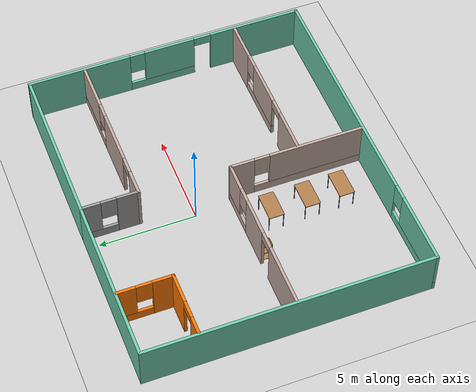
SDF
<sdf version="1.6">
 <world name="default">
  <model name="ground_plane">
   <static>1</static>
   <link name="link">
    <collision name="collision">
     <geometry><plane><normal>0 0 1</normal><size>100 100</size></plane></geometry>
     <surface>
      <contact><collide_bitmask>65535</collide_bitmask></contact>
      <friction><ode><mu>100</mu><mu2>50</mu2></ode></friction>
     </surface>
    </collision>
    <visual name="visual">
     <cast_shadows>0</cast_shadows>
     <geometry><plane><normal>0 0 1</normal><size>100 100</size></plane></geometry>
     <material>
      <script><uri>file://media/materials/scripts/gazebo.material</uri><name>Gazebo/Grey</name></script>
     </material>
    </visual>
   </link>
  </model>
  <model name="building">
   <pose>0.568611 -1.73991 0 0 -0 0</pose>
   <link name="Wall_0">
    <collision name="Wall_0_Collision">
     <geometry><box><size>14.75 0.15 2.5</size></box></geometry>
     <pose>0 0 1.25 0 -0 0</pose>
    </collision>
    <visual name="Wall_0_Visual">
     <pose>0 0 1.25 0 -0 0</pose>
     <geometry><box><size>14.75 0.15 2.5</size></box></geometry>
     <material>
      <script><uri>file://media/materials/scripts/gazebo.material</uri><name>Gazebo/Grey</name></script>
      <ambient>0.435294 0.796078 0.67451 1</ambient>
     </material>
     <meta><layer>0</layer></meta>
    </visual>
    <pose>-8.54234 0.004228 0 0 -0 1.5708</pose>
   </link>
   <link name="Wall_11">
    <pose>4.23266 4.39423 0 0 -0 0</pose>
    <visual name="Wall_11_Visual_0">
     <pose>-3.56356 0 1.25 0 -0 0</pose>
     <geometry><box><size>1.37289 0.15 2.5</size></box></geometry>
     <material>
      <script><uri>file://media/materials/scripts/gazebo.material</uri><name>Gazebo/Grey</name></script>
      <ambient>0.760784 0.662745 0.627451 1</ambient>
     </material>
     <meta><layer>0</layer></meta>
    </visual>
    <collision name="Wall_11_Collision_0">
     <geometry><box><size>1.37289 0.15 2.5</size></box></geometry>
     <pose>-3.56356 0 1.25 0 -0 0</pose>
    </collision>
    <visual name="Wall_11_Visual_1">
     <pose>-0.527181 0 1.25 0 -0 0</pose>
     <geometry><box><size>2.89987 0.15 2.5</size></box></geometry>
     <material>
      <script><uri>file://media/materials/scripts/gazebo.material</uri><name>Gazebo/Grey</name></script>
      <ambient>0.760784 0.662745 0.627451 1</ambient>
     </material>
     <meta><layer>0</layer></meta>
    </visual>
    <collision name="Wall_11_Collision_1">
     <geometry><box><size>2.89987 0.15 2.5</size></box></geometry>
     <pose>-0.527181 0 1.25 0 -0 0</pose>
    </collision>
    <visual name="Wall_11_Visual_2">
     <pose>2.58638 0 0.25 0 -0 0</pose>
     <geometry><box><size>3.32725 0.15 0.5</size></box></geometry>
     <material>
      <script><uri>file://media/materials/scripts/gazebo.material</uri><name>Gazebo/Grey</name></script>
      <ambient>0.760784 0.662745 0.627451 1</ambient>
     </material>
     <meta><layer>0</layer></meta>
    </visual>
    <collision name="Wall_11_Collision_2">
     <geometry><box><size>3.32725 0.15 0.5</size></box></geometry>
     <pose>2.58638 0 0.25 0 -0 0</pose>
    </collision>
    <visual name="Wall_11_Visual_3">
     <pose>2.98638 0 1.5 0 -0 0</pose>
     <geometry><box><size>2.52725 0.15 2</size></box></geometry>
     <material>
      <script><uri>file://media/materials/scripts/gazebo.material</uri><name>Gazebo/Grey</name></script>
      <ambient>0.760784 0.662745 0.627451 1</ambient>
     </material>
     <meta><layer>0</layer></meta>
    </visual>
    <collision name="Wall_11_Collision_3">
     <geometry><box><size>2.52725 0.15 2</size></box></geometry>
     <pose>2.98638 0 1.5 0 -0 0</pose>
    </collision>
    <visual name="Wall_11_Visual_4">
     <pose>1.32275 0 1.9 0 -0 0</pose>
     <geometry><box><size>0.8 0.15 1.2</size></box></geometry>
     <material>
      <script><uri>file://media/materials/scripts/gazebo.material</uri><name>Gazebo/Grey</name></script>
      <ambient>0.760784 0.662745 0.627451 1</ambient>
     </material>
     <meta><layer>0</layer></meta>
    </visual>
    <collision name="Wall_11_Collision_4">
     <geometry><box><size>0.8 0.15 1.2</size></box></geometry>
     <pose>1.32275 0 1.9 0 -0 0</pose>
    </collision>
    <visual name="Wall_11_Visual_5">
     <pose>-2.42711 0 2.25 0 -0 0</pose>
     <geometry><box><size>0.9 0.15 0.5</size></box></geometry>
     <material>
      <script><uri>file://media/materials/scripts/gazebo.material</uri><name>Gazebo/Grey</name></script>
      <ambient>0.760784 0.662745 0.627451 1</ambient>
     </material>
     <meta><layer>0</layer></meta>
    </visual>
    <collision name="Wall_11_Collision_5">
     <geometry><box><size>0.9 0.15 0.5</size></box></geometry>
     <pose>-2.42711 0 2.25 0 -0 0</pose>
    </collision>
   </link>
   <link name="Wall_13">
    <collision name="Wall_13_Collision">
     <geometry><box><size>8.5 0.15 2.5</size></box></geometry>
     <pose>0 0 1.25 0 -0 0</pose>
    </collision>
    <visual name="Wall_13_Visual">
     <pose>0 0 1.25 0 -0 0</pose>
     <geometry><box><size>8.5 0.15 2.5</size></box></geometry>
     <material>
      <script><uri>file://media/materials/scripts/gazebo.material</uri><name>Gazebo/Grey</name></script>
      <ambient>0.435294 0.796078 0.67451 1</ambient>
     </material>
     <meta><layer>0</layer></meta>
    </visual>
    <pose>4.23266 7.30423 0 0 -0 0</pose>
   </link>
   <link name="Wall_15">
    <pose>-4.28833 -0.269812 0 0 0 -4.6e-05</pose>
    <visual name="Wall_15_Visual_0">
     <pose>-2.61857 0 1.25 0 -0 0</pose>
     <geometry><box><size>3.26287 0.15 2.5</size></box></geometry>
     <material>
      <script><uri>file://media/materials/scripts/gazebo.material</uri><name>Gazebo/Grey</name></script>
      <ambient>0.760784 0.662745 0.627451 1</ambient>
     </material>
     <meta><layer>0</layer></meta>
    </visual>
    <collision name="Wall_15_Collision_0">
     <geometry><box><size>3.26287 0.15 2.5</size></box></geometry>
     <pose>-2.61857 0 1.25 0 -0 0</pose>
    </collision>
    <visual name="Wall_15_Visual_1">
     <pose>0.91749 0 1.25 0 -0 0</pose>
     <geometry><box><size>2.00924 0.15 2.5</size></box></geometry>
     <material>
      <script><uri>file://media/materials/scripts/gazebo.material</uri><name>Gazebo/Grey</name></script>
      <ambient>0.760784 0.662745 0.627451 1</ambient>
     </material>
     <meta><layer>0</layer></meta>
    </visual>
    <collision name="Wall_15_Collision_1">
     <geometry><box><size>2.00924 0.15 2.5</size></box></geometry>
     <pose>0.91749 0 1.25 0 -0 0</pose>
    </collision>
    <visual name="Wall_15_Visual_2">
     <pose>3.08605 0 0.25 0 -0 0</pose>
     <geometry><box><size>2.32789 0.15 0.5</size></box></geometry>
     <material>
      <script><uri>file://media/materials/scripts/gazebo.material</uri><name>Gazebo/Grey</name></script>
      <ambient>0.760784 0.662745 0.627451 1</ambient>
     </material>
     <meta><layer>0</layer></meta>
    </visual>
    <collision name="Wall_15_Collision_2">
     <geometry><box><size>2.32789 0.15 0.5</size></box></geometry>
     <pose>3.08605 0 0.25 0 -0 0</pose>
    </collision>
    <visual name="Wall_15_Visual_3">
     <pose>3.48605 0 1.5 0 -0 0</pose>
     <geometry><box><size>1.52789 0.15 2</size></box></geometry>
     <material>
      <script><uri>file://media/materials/scripts/gazebo.material</uri><name>Gazebo/Grey</name></script>
      <ambient>0.760784 0.662745 0.627451 1</ambient>
     </material>
     <meta><layer>0</layer></meta>
    </visual>
    <collision name="Wall_15_Collision_3">
     <geometry><box><size>1.52789 0.15 2</size></box></geometry>
     <pose>3.48605 0 1.5 0 -0 0</pose>
    </collision>
    <visual name="Wall_15_Visual_4">
     <pose>2.32211 0 1.9 0 -0 0</pose>
     <geometry><box><size>0.8 0.15 1.2</size></box></geometry>
     <material>
      <script><uri>file://media/materials/scripts/gazebo.material</uri><name>Gazebo/Grey</name></script>
      <ambient>0.760784 0.662745 0.627451 1</ambient>
     </material>
     <meta><layer>0</layer></meta>
    </visual>
    <collision name="Wall_15_Collision_4">
     <geometry><box><size>0.8 0.15 1.2</size></box></geometry>
     <pose>2.32211 0 1.9 0 -0 0</pose>
    </collision>
    <visual name="Wall_15_Visual_5">
     <pose>-0.537132 0 2.25 0 -0 0</pose>
     <geometry><box><size>0.9 0.15 0.5</size></box></geometry>
     <material>
      <script><uri>file://media/materials/scripts/gazebo.material</uri><name>Gazebo/Grey</name></script>
      <ambient>0.760784 0.662745 0.627451 1</ambient>
     </material>
     <meta><layer>0</layer></meta>
    </visual>
    <collision name="Wall_15_Collision_5">
     <geometry><box><size>0.9 0.15 0.5</size></box></geometry>
     <pose>-0.537132 0 2.25 0 -0 0</pose>
    </collision>
   </link>
   <link name="Wall_16">
    <pose>-0.113577 -3.745 0 0 0 -1.5708</pose>
    <visual name="Wall_16_Visual_0">
     <pose>-2.88983 0 1.25 0 -0 0</pose>
     <geometry><box><size>1.32035 0.15 2.5</size></box></geometry>
     <material>
      <script><uri>file://media/materials/scripts/gazebo.material</uri><name>Gazebo/Grey</name></script>
      <ambient>0.760784 0.662745 0.627451 1</ambient>
     </material>
     <meta><layer>0</layer></meta>
    </visual>
    <collision name="Wall_16_Collision_0">
     <geometry><box><size>1.32035 0.15 2.5</size></box></geometry>
     <pose>-2.88983 0 1.25 0 -0 0</pose>
    </collision>
    <visual name="Wall_16_Visual_1">
     <pose>0.660174 0 0.25 0 -0 0</pose>
     <geometry><box><size>5.77965 0.15 0.5</size></box></geometry>
     <material>
      <script><uri>file://media/materials/scripts/gazebo.material</uri><name>Gazebo/Grey</name></script>
      <ambient>0.760784 0.662745 0.627451 1</ambient>
     </material>
     <meta><layer>0</layer></meta>
    </visual>
    <collision name="Wall_16_Collision_1">
     <geometry><box><size>5.77965 0.15 0.5</size></box></geometry>
     <pose>0.660174 0 0.25 0 -0 0</pose>
    </collision>
    <visual name="Wall_16_Visual_2">
     <pose>1.06017 0 1.5 0 -0 0</pose>
     <geometry><box><size>4.97965 0.15 2</size></box></geometry>
     <material>
      <script><uri>file://media/materials/scripts/gazebo.material</uri><name>Gazebo/Grey</name></script>
      <ambient>0.760784 0.662745 0.627451 1</ambient>
     </material>
     <meta><layer>0</layer></meta>
    </visual>
    <collision name="Wall_16_Collision_2">
     <geometry><box><size>4.97965 0.15 2</size></box></geometry>
     <pose>1.06017 0 1.5 0 -0 0</pose>
    </collision>
    <visual name="Wall_16_Visual_3">
     <pose>-1.82965 0 1.9 0 -0 0</pose>
     <geometry><box><size>0.8 0.15 1.2</size></box></geometry>
     <material>
      <script><uri>file://media/materials/scripts/gazebo.material</uri><name>Gazebo/Grey</name></script>
      <ambient>0.760784 0.662745 0.627451 1</ambient>
     </material>
     <meta><layer>0</layer></meta>
    </visual>
    <collision name="Wall_16_Collision_3">
     <geometry><box><size>0.8 0.15 1.2</size></box></geometry>
     <pose>-1.82965 0 1.9 0 -0 0</pose>
    </collision>
   </link>
   <link name="Wall_18">
    <pose>4.19252 -3.81906 0 0 -0 3.14159</pose>
    <visual name="Wall_18_Visual_0">
     <pose>-3.25532 0 1.25 0 -0 0</pose>
     <geometry><box><size>2.08936 0.15 2.5</size></box></geometry>
     <material>
      <script><uri>file://media/materials/scripts/gazebo.material</uri><name>Gazebo/Grey</name></script>
      <ambient>0.760784 0.662745 0.627451 1</ambient>
     </material>
     <meta><layer>0</layer></meta>
    </visual>
    <collision name="Wall_18_Collision_0">
     <geometry><box><size>2.08936 0.15 2.5</size></box></geometry>
     <pose>-3.25532 0 1.25 0 -0 0</pose>
    </collision>
    <visual name="Wall_18_Visual_1">
     <pose>3.14264 0 1.25 0 -0 0</pose>
     <geometry><box><size>2.31472 0.15 2.5</size></box></geometry>
     <material>
      <script><uri>file://media/materials/scripts/gazebo.material</uri><name>Gazebo/Grey</name></script>
      <ambient>0.760784 0.662745 0.627451 1</ambient>
     </material>
     <meta><layer>0</layer></meta>
    </visual>
    <collision name="Wall_18_Collision_1">
     <geometry><box><size>2.31472 0.15 2.5</size></box></geometry>
     <pose>3.14264 0 1.25 0 -0 0</pose>
    </collision>
    <visual name="Wall_18_Visual_2">
     <pose>-0.562678 0 0.25 0 -0 0</pose>
     <geometry><box><size>3.29592 0.15 0.5</size></box></geometry>
     <material>
      <script><uri>file://media/materials/scripts/gazebo.material</uri><name>Gazebo/Grey</name></script>
      <ambient>0.760784 0.662745 0.627451 1</ambient>
     </material>
     <meta><layer>0</layer></meta>
    </visual>
    <collision name="Wall_18_Collision_2">
     <geometry><box><size>3.29592 0.15 0.5</size></box></geometry>
     <pose>-0.562678 0 0.25 0 -0 0</pose>
    </collision>
    <visual name="Wall_18_Visual_3">
     <pose>-0.162678 0 1.5 0 -0 0</pose>
     <geometry><box><size>2.49593 0.15 2</size></box></geometry>
     <material>
      <script><uri>file://media/materials/scripts/gazebo.material</uri><name>Gazebo/Grey</name></script>
      <ambient>0.760784 0.662745 0.627451 1</ambient>
     </material>
     <meta><layer>0</layer></meta>
    </visual>
    <collision name="Wall_18_Collision_3">
     <geometry><box><size>2.49593 0.15 2</size></box></geometry>
     <pose>-0.162678 0 1.5 0 -0 0</pose>
    </collision>
    <visual name="Wall_18_Visual_4">
     <pose>-1.81064 0 1.9 0 -0 0</pose>
     <geometry><box><size>0.8 0.15 1.2</size></box></geometry>
     <material>
      <script><uri>file://media/materials/scripts/gazebo.material</uri><name>Gazebo/Grey</name></script>
      <ambient>0.760784 0.662745 0.627451 1</ambient>
     </material>
     <meta><layer>0</layer></meta>
    </visual>
    <collision name="Wall_18_Collision_4">
     <geometry><box><size>0.8 0.15 1.2</size></box></geometry>
     <pose>-1.81064 0 1.9 0 -0 0</pose>
    </collision>
    <visual name="Wall_18_Visual_5">
     <pose>1.53528 0 2.25 0 -0 0</pose>
     <geometry><box><size>0.9 0.15 0.5</size></box></geometry>
     <material>
      <script><uri>file://media/materials/scripts/gazebo.material</uri><name>Gazebo/Grey</name></script>
      <ambient>0.760784 0.662745 0.627451 1</ambient>
     </material>
     <meta><layer>0</layer></meta>
    </visual>
    <collision name="Wall_18_Collision_5">
     <geometry><box><size>0.9 0.15 0.5</size></box></geometry>
     <pose>1.53528 0 2.25 0 -0 0</pose>
    </collision>
   </link>
   <link name="Wall_2">
    <pose>8.54758 0.007002 0 0 0 -1.5708</pose>
    <visual name="Wall_2_Visual_0">
     <pose>-4.65754 0 1.25 0 -0 0</pose>
     <geometry><box><size>5.43493 0.15 2.5</size></box></geometry>
     <material>
      <script><uri>file://media/materials/scripts/gazebo.material</uri><name>Gazebo/Grey</name></script>
      <ambient>0.435294 0.796078 0.67451 1</ambient>
     </material>
     <meta><layer>0</layer></meta>
    </visual>
    <collision name="Wall_2_Collision_0">
     <geometry><box><size>5.43493 0.15 2.5</size></box></geometry>
     <pose>-4.65754 0 1.25 0 -0 0</pose>
    </collision>
    <visual name="Wall_2_Visual_1">
     <pose>4.92366 0 1.25 0 -0 0</pose>
     <geometry><box><size>4.90268 0.15 2.5</size></box></geometry>
     <material>
      <script><uri>file://media/materials/scripts/gazebo.material</uri><name>Gazebo/Grey</name></script>
      <ambient>0.435294 0.796078 0.67451 1</ambient>
     </material>
     <meta><layer>0</layer></meta>
    </visual>
    <collision name="Wall_2_Collision_1">
     <geometry><box><size>4.90268 0.15 2.5</size></box></geometry>
     <pose>4.92366 0 1.25 0 -0 0</pose>
    </collision>
    <visual name="Wall_2_Visual_2">
     <pose>-0.183873 0 0.25 0 -0 0</pose>
     <geometry><box><size>3.51239 0.15 0.5</size></box></geometry>
     <material>
      <script><uri>file://media/materials/scripts/gazebo.material</uri><name>Gazebo/Grey</name></script>
      <ambient>0.435294 0.796078 0.67451 1</ambient>
     </material>
     <meta><layer>0</layer></meta>
    </visual>
    <collision name="Wall_2_Collision_2">
     <geometry><box><size>3.51239 0.15 0.5</size></box></geometry>
     <pose>-0.183873 0 0.25 0 -0 0</pose>
    </collision>
    <visual name="Wall_2_Visual_3">
     <pose>0.216127 0 1.5 0 -0 0</pose>
     <geometry><box><size>2.71239 0.15 2</size></box></geometry>
     <material>
      <script><uri>file://media/materials/scripts/gazebo.material</uri><name>Gazebo/Grey</name></script>
      <ambient>0.435294 0.796078 0.67451 1</ambient>
     </material>
     <meta><layer>0</layer></meta>
    </visual>
    <collision name="Wall_2_Collision_3">
     <geometry><box><size>2.71239 0.15 2</size></box></geometry>
     <pose>0.216127 0 1.5 0 -0 0</pose>
    </collision>
    <visual name="Wall_2_Visual_4">
     <pose>-1.54007 0 1.9 0 -0 0</pose>
     <geometry><box><size>0.8 0.15 1.2</size></box></geometry>
     <material>
      <script><uri>file://media/materials/scripts/gazebo.material</uri><name>Gazebo/Grey</name></script>
      <ambient>0.435294 0.796078 0.67451 1</ambient>
     </material>
     <meta><layer>0</layer></meta>
    </visual>
    <collision name="Wall_2_Collision_4">
     <geometry><box><size>0.8 0.15 1.2</size></box></geometry>
     <pose>-1.54007 0 1.9 0 -0 0</pose>
    </collision>
    <visual name="Wall_2_Visual_5">
     <pose>2.02232 0 2.25 0 -0 0</pose>
     <geometry><box><size>0.9 0.15 0.5</size></box></geometry>
     <material>
      <script><uri>file://media/materials/scripts/gazebo.material</uri><name>Gazebo/Grey</name></script>
      <ambient>0.435294 0.796078 0.67451 1</ambient>
     </material>
     <meta><layer>0</layer></meta>
    </visual>
    <collision name="Wall_2_Collision_5">
     <geometry><box><size>0.9 0.15 0.5</size></box></geometry>
     <pose>2.02232 0 2.25 0 -0 0</pose>
    </collision>
   </link>
   <link name="Wall_20">
    <pose>-6.81011 4.48629 0 0 -0 0</pose>
    <visual name="Wall_20_Visual_0">
     <pose>-1.26355 0 1.25 0 -0 0</pose>
     <geometry><box><size>0.972906 0.15 2.5</size></box></geometry>
     <material>
      <script><uri>file://media/materials/scripts/gazebo.material</uri><name>Gazebo/Grey</name></script>
      <ambient>0.996078 0.47451 0.0196078 1</ambient>
     </material>
     <meta><layer>0</layer></meta>
    </visual>
    <collision name="Wall_20_Collision_0">
     <geometry><box><size>0.972906 0.15 2.5</size></box></geometry>
     <pose>-1.26355 0 1.25 0 -0 0</pose>
    </collision>
    <visual name="Wall_20_Visual_1">
     <pose>0.936453 0 1.25 0 -0 0</pose>
     <geometry><box><size>1.62709 0.15 2.5</size></box></geometry>
     <material>
      <script><uri>file://media/materials/scripts/gazebo.material</uri><name>Gazebo/Grey</name></script>
      <ambient>0.996078 0.47451 0.0196078 1</ambient>
     </material>
     <meta><layer>0</layer></meta>
    </visual>
    <collision name="Wall_20_Collision_1">
     <geometry><box><size>1.62709 0.15 2.5</size></box></geometry>
     <pose>0.936453 0 1.25 0 -0 0</pose>
    </collision>
    <visual name="Wall_20_Visual_2">
     <pose>-0.327094 0 2.25 0 -0 0</pose>
     <geometry><box><size>0.9 0.15 0.5</size></box></geometry>
     <material>
      <script><uri>file://media/materials/scripts/gazebo.material</uri><name>Gazebo/Grey</name></script>
      <ambient>0.996078 0.47451 0.0196078 1</ambient>
     </material>
     <meta><layer>0</layer></meta>
    </visual>
    <collision name="Wall_20_Collision_2">
     <geometry><box><size>0.9 0.15 0.5</size></box></geometry>
     <pose>-0.327094 0 2.25 0 -0 0</pose>
    </collision>
   </link>
   <link name="Wall_21">
    <pose>-5.13511 5.86129 0 0 -0 1.5708</pose>
    <visual name="Wall_21_Visual_0">
     <pose>-0.89205 0 1.25 0 -0 0</pose>
     <geometry><box><size>1.1159 0.15 2.5</size></box></geometry>
     <material>
      <script><uri>file://media/materials/scripts/gazebo.material</uri><name>Gazebo/Grey</name></script>
      <ambient>0.996078 0.47451 0.0196078 1</ambient>
     </material>
     <meta><layer>0</layer></meta>
    </visual>
    <collision name="Wall_21_Collision_0">
     <geometry><box><size>1.1159 0.15 2.5</size></box></geometry>
     <pose>-0.89205 0 1.25 0 -0 0</pose>
    </collision>
    <visual name="Wall_21_Visual_1">
     <pose>0.55795 0 0.25 0 -0 0</pose>
     <geometry><box><size>1.7841 0.15 0.5</size></box></geometry>
     <material>
      <script><uri>file://media/materials/scripts/gazebo.material</uri><name>Gazebo/Grey</name></script>
      <ambient>0.996078 0.47451 0.0196078 1</ambient>
     </material>
     <meta><layer>0</layer></meta>
    </visual>
    <collision name="Wall_21_Collision_1">
     <geometry><box><size>1.7841 0.15 0.5</size></box></geometry>
     <pose>0.55795 0 0.25 0 -0 0</pose>
    </collision>
    <visual name="Wall_21_Visual_2">
     <pose>0.95795 0 1.5 0 -0 0</pose>
     <geometry><box><size>0.9841 0.15 2</size></box></geometry>
     <material>
      <script><uri>file://media/materials/scripts/gazebo.material</uri><name>Gazebo/Grey</name></script>
      <ambient>0.996078 0.47451 0.0196078 1</ambient>
     </material>
     <meta><layer>0</layer></meta>
    </visual>
    <collision name="Wall_21_Collision_2">
     <geometry><box><size>0.9841 0.15 2</size></box></geometry>
     <pose>0.95795 0 1.5 0 -0 0</pose>
    </collision>
    <visual name="Wall_21_Visual_3">
     <pose>0.0659 0 1.9 0 -0 0</pose>
     <geometry><box><size>0.8 0.15 1.2</size></box></geometry>
     <material>
      <script><uri>file://media/materials/scripts/gazebo.material</uri><name>Gazebo/Grey</name></script>
      <ambient>0.996078 0.47451 0.0196078 1</ambient>
     </material>
     <meta><layer>0</layer></meta>
    </visual>
    <collision name="Wall_21_Collision_3">
     <geometry><box><size>0.8 0.15 1.2</size></box></geometry>
     <pose>0.0659 0 1.9 0 -0 0</pose>
    </collision>
   </link>
   <link name="Wall_24">
    <pose>0.057659 5.84923 0 0 -0 1.5708</pose>
    <visual name="Wall_24_Visual_0">
     <pose>-0.929516 0 1.25 0 -0 0</pose>
     <geometry><box><size>1.20097 0.15 2.5</size></box></geometry>
     <material>
      <script><uri>file://media/materials/scripts/gazebo.material</uri><name>Gazebo/Grey</name></script>
      <ambient>1 1 1 1</ambient>
     </material>
     <meta><layer>0</layer></meta>
    </visual>
    <collision name="Wall_24_Collision_0">
     <geometry><box><size>1.20097 0.15 2.5</size></box></geometry>
     <pose>-0.929516 0 1.25 0 -0 0</pose>
    </collision>
    <visual name="Wall_24_Visual_1">
     <pose>0.600484 0 0.25 0 -0 0</pose>
     <geometry><box><size>1.85903 0.15 0.5</size></box></geometry>
     <material>
      <script><uri>file://media/materials/scripts/gazebo.material</uri><name>Gazebo/Grey</name></script>
      <ambient>1 1 1 1</ambient>
     </material>
     <meta><layer>0</layer></meta>
    </visual>
    <collision name="Wall_24_Collision_1">
     <geometry><box><size>1.85903 0.15 0.5</size></box></geometry>
     <pose>0.600484 0 0.25 0 -0 0</pose>
    </collision>
    <visual name="Wall_24_Visual_2">
     <pose>1.00048 0 1.5 0 -0 0</pose>
     <geometry><box><size>1.05903 0.15 2</size></box></geometry>
     <material>
      <script><uri>file://media/materials/scripts/gazebo.material</uri><name>Gazebo/Grey</name></script>
      <ambient>1 1 1 1</ambient>
     </material>
     <meta><layer>0</layer></meta>
    </visual>
    <collision name="Wall_24_Collision_2">
     <geometry><box><size>1.05903 0.15 2</size></box></geometry>
     <pose>1.00048 0 1.5 0 -0 0</pose>
    </collision>
    <visual name="Wall_24_Visual_3">
     <pose>0.070969 0 1.9 0 -0 0</pose>
     <geometry><box><size>0.8 0.15 1.2</size></box></geometry>
     <material>
      <script><uri>file://media/materials/scripts/gazebo.material</uri><name>Gazebo/Grey</name></script>
      <ambient>1 1 1 1</ambient>
     </material>
     <meta><layer>0</layer></meta>
    </visual>
    <collision name="Wall_24_Collision_3">
     <geometry><box><size>0.8 0.15 1.2</size></box></geometry>
     <pose>0.070969 0 1.9 0 -0 0</pose>
    </collision>
   </link>
   <link name="Wall_7">
    <pose>-0.022577 -7.307 0 0 -0 3.14159</pose>
    <visual name="Wall_7_Visual_0">
     <pose>-2.28106 0 1.25 0 -0 0</pose>
     <geometry><box><size>12.6379 0.15 2.5</size></box></geometry>
     <material>
      <script><uri>file://media/materials/scripts/gazebo.material</uri><name>Gazebo/Grey</name></script>
      <ambient>0.435294 0.796078 0.67451 1</ambient>
     </material>
     <meta><layer>0</layer></meta>
    </visual>
    <collision name="Wall_7_Collision_0">
     <geometry><box><size>12.6379 0.15 2.5</size></box></geometry>
     <pose>-2.28106 0 1.25 0 -0 0</pose>
    </collision>
    <visual name="Wall_7_Visual_1">
     <pose>6.31894 0 0.25 0 -0 0</pose>
     <geometry><box><size>4.56212 0.15 0.5</size></box></geometry>
     <material>
      <script><uri>file://media/materials/scripts/gazebo.material</uri><name>Gazebo/Grey</name></script>
      <ambient>0.435294 0.796078 0.67451 1</ambient>
     </material>
     <meta><layer>0</layer></meta>
    </visual>
    <collision name="Wall_7_Collision_1">
     <geometry><box><size>4.56212 0.15 0.5</size></box></geometry>
     <pose>6.31894 0 0.25 0 -0 0</pose>
    </collision>
    <visual name="Wall_7_Visual_2">
     <pose>6.71894 0 1.5 0 -0 0</pose>
     <geometry><box><size>3.76212 0.15 2</size></box></geometry>
     <material>
      <script><uri>file://media/materials/scripts/gazebo.material</uri><name>Gazebo/Grey</name></script>
      <ambient>0.435294 0.796078 0.67451 1</ambient>
     </material>
     <meta><layer>0</layer></meta>
    </visual>
    <collision name="Wall_7_Collision_2">
     <geometry><box><size>3.76212 0.15 2</size></box></geometry>
     <pose>6.71894 0 1.5 0 -0 0</pose>
    </collision>
    <visual name="Wall_7_Visual_3">
     <pose>4.43788 0 1.9 0 -0 0</pose>
     <geometry><box><size>0.8 0.15 1.2</size></box></geometry>
     <material>
      <script><uri>file://media/materials/scripts/gazebo.material</uri><name>Gazebo/Grey</name></script>
      <ambient>0.435294 0.796078 0.67451 1</ambient>
     </material>
     <meta><layer>0</layer></meta>
    </visual>
    <collision name="Wall_7_Collision_3">
     <geometry><box><size>0.8 0.15 1.2</size></box></geometry>
     <pose>4.43788 0 1.9 0 -0 0</pose>
    </collision>
   </link>
   <link name="Wall_9">
    <collision name="Wall_9_Collision">
     <geometry><box><size>8.75 0.15 2.5</size></box></geometry>
     <pose>0 0 1.25 0 -0 0</pose>
    </collision>
    <visual name="Wall_9_Visual">
     <pose>0 0 1.25 0 -0 0</pose>
     <geometry><box><size>8.75 0.15 2.5</size></box></geometry>
     <material>
      <script><uri>file://media/materials/scripts/gazebo.material</uri><name>Gazebo/Grey</name></script>
      <ambient>0.435294 0.796078 0.67451 1</ambient>
     </material>
     <meta><layer>0</layer></meta>
    </visual>
    <pose>-4.24234 7.30423 0 0 -0 0</pose>
   </link>
   <static>1</static>
  </model>
  <model name="table_clone_0">
   <static>1</static>
   <link name="link">
    <collision name="surface">
     <pose>0 0 1 0 -0 0</pose>
     <geometry><box><size>1.5 0.8 0.03</size></box></geometry>
     <surface><friction><ode><mu>0.6</mu><mu2>0.6</mu2></ode></friction></surface>
    </collision>
    <visual name="visual1">
     <pose>0 0 1 0 -0 0</pose>
     <geometry><box><size>1.5 0.8 0.03</size></box></geometry>
     <material>
      <script><uri>file://media/materials/scripts/gazebo.material</uri><name>Gazebo/Wood</name></script>
     </material>
    </visual>
    <collision name="front_left_leg">
     <pose>0.68 0.38 0.5 0 -0 0</pose>
     <geometry><cylinder><radius>0.02</radius><length>1</length></cylinder></geometry>
    </collision>
    <visual name="front_left_leg">
     <pose>0.68 0.38 0.5 0 -0 0</pose>
     <geometry><cylinder><radius>0.02</radius><length>1</length></cylinder></geometry>
     <material>
      <script><uri>file://media/materials/scripts/gazebo.material</uri><name>Gazebo/Grey</name></script>
     </material>
    </visual>
    <collision name="front_right_leg">
     <pose>0.68 -0.38 0.5 0 -0 0</pose>
     <geometry><cylinder><radius>0.02</radius><length>1</length></cylinder></geometry>
    </collision>
    <visual name="front_right_leg">
     <pose>0.68 -0.38 0.5 0 -0 0</pose>
     <geometry><cylinder><radius>0.02</radius><length>1</length></cylinder></geometry>
     <material>
      <script><uri>file://media/materials/scripts/gazebo.material</uri><name>Gazebo/Grey</name></script>
     </material>
    </visual>
    <collision name="back_right_leg">
     <pose>-0.68 -0.38 0.5 0 -0 0</pose>
     <geometry><cylinder><radius>0.02</radius><length>1</length></cylinder></geometry>
    </collision>
    <visual name="back_right_leg">
     <pose>-0.68 -0.38 0.5 0 -0 0</pose>
     <geometry><cylinder><radius>0.02</radius><length>1</length></cylinder></geometry>
     <material>
      <script><uri>file://media/materials/scripts/gazebo.material</uri><name>Gazebo/Grey</name></script>
     </material>
    </visual>
    <collision name="back_left_leg">
     <pose>-0.68 0.38 0.5 0 -0 0</pose>
     <geometry><cylinder><radius>0.02</radius><length>1</length></cylinder></geometry>
    </collision>
    <visual name="back_left_leg">
     <pose>-0.68 0.38 0.5 0 -0 0</pose>
     <geometry><cylinder><radius>0.02</radius><length>1</length></cylinder></geometry>
     <material>
      <script><uri>file://media/materials/scripts/gazebo.material</uri><name>Gazebo/Grey</name></script>
     </material>
    </visual>
   </link>
   <pose>-1.38448 -3.43777 0 0 -0 0</pose>
  </model>
  <model name="table_clone_1">
   <static>1</static>
   <link name="link">
    <collision name="surface">
     <pose>0 0 1 0 -0 0</pose>
     <geometry><box><size>1.5 0.8 0.03</size></box></geometry>
     <surface><friction><ode><mu>0.6</mu><mu2>0.6</mu2></ode></friction></surface>
    </collision>
    <visual name="visual1">
     <pose>0 0 1 0 -0 0</pose>
     <geometry><box><size>1.5 0.8 0.03</size></box></geometry>
     <material>
      <script><uri>file://media/materials/scripts/gazebo.material</uri><name>Gazebo/Wood</name></script>
     </material>
    </visual>
    <collision name="front_left_leg">
     <pose>0.68 0.38 0.5 0 -0 0</pose>
     <geometry><cylinder><radius>0.02</radius><length>1</length></cylinder></geometry>
    </collision>
    <visual name="front_left_leg">
     <pose>0.68 0.38 0.5 0 -0 0</pose>
     <geometry><cylinder><radius>0.02</radius><length>1</length></cylinder></geometry>
     <material>
      <script><uri>file://media/materials/scripts/gazebo.material</uri><name>Gazebo/Grey</name></script>
     </material>
    </visual>
    <collision name="front_right_leg">
     <pose>0.68 -0.38 0.5 0 -0 0</pose>
     <geometry><cylinder><radius>0.02</radius><length>1</length></cylinder></geometry>
    </collision>
    <visual name="front_right_leg">
     <pose>0.68 -0.38 0.5 0 -0 0</pose>
     <geometry><cylinder><radius>0.02</radius><length>1</length></cylinder></geometry>
     <material>
      <script><uri>file://media/materials/scripts/gazebo.material</uri><name>Gazebo/Grey</name></script>
     </material>
    </visual>
    <collision name="back_right_leg">
     <pose>-0.68 -0.38 0.5 0 -0 0</pose>
     <geometry><cylinder><radius>0.02</radius><length>1</length></cylinder></geometry>
    </collision>
    <visual name="back_right_leg">
     <pose>-0.68 -0.38 0.5 0 -0 0</pose>
     <geometry><cylinder><radius>0.02</radius><length>1</length></cylinder></geometry>
     <material>
      <script><uri>file://media/materials/scripts/gazebo.material</uri><name>Gazebo/Grey</name></script>
     </material>
    </visual>
    <collision name="back_left_leg">
     <pose>-0.68 0.38 0.5 0 -0 0</pose>
     <geometry><cylinder><radius>0.02</radius><length>1</length></cylinder></geometry>
    </collision>
    <visual name="back_left_leg">
     <pose>-0.68 0.38 0.5 0 -0 0</pose>
     <geometry><cylinder><radius>0.02</radius><length>1</length></cylinder></geometry>
     <material>
      <script><uri>file://media/materials/scripts/gazebo.material</uri><name>Gazebo/Grey</name></script>
     </material>
    </visual>
   </link>
   <pose>-1.37238 -5.35339 0 0 -0 0</pose>
  </model>
  <model name="cabinet_clone_0">
   <static>1</static>
   <link name="cabinet_bottom_plate">
    <inertial>
     <pose>0 0 -1 0 -0 0</pose>
     <inertia><ixx>2.05</ixx><ixy>0</ixy><ixz>0</ixz><iyy>2.05</iyy><iyz>0</iyz><izz>2.05</izz></inertia>
     <mass>25</mass>
    </inertial>
    <collision name="cabinet_bottom_plate_geom">
     <pose>0 0 0.01 0 -0 0</pose>
     <geometry><box><size>0.45 0.45 0.02</size></box></geometry>
    </collision>
    <visual name="cabinet_bottom_plate_geom_visual">
     <pose>0 0 0.01 0 -0 0</pose>
     <geometry><box><size>0.45 0.45 0.02</size></box></geometry>
     <material>
      <script><uri>file://media/materials/scripts/gazebo.material</uri><name>Gazebo/Wood</name></script>
     </material>
    </visual>
    <collision name="cabinet_bottom_plate_geom_cabinet_back_plate">
     <pose>0.235 0 0.51 0 -0 0</pose>
     <geometry><box><size>0.02 0.45 1.02</size></box></geometry>
    </collision>
    <visual name="cabinet_bottom_plate_geom_cabinet_back_plate_visual">
     <pose>0.235 0 0.51 0 -0 0</pose>
     <geometry><box><size>0.02 0.45 1.02</size></box></geometry>
     <material>
      <script><uri>file://media/materials/scripts/gazebo.material</uri><name>Gazebo/Wood</name></script>
     </material>
    </visual>
    <collision name="cabinet_bottom_plate_geom_cabinet_left_plate">
     <pose>0 0.235 0.51 0 -0 0</pose>
     <geometry><box><size>0.45 0.02 1.02</size></box></geometry>
    </collision>
    <visual name="cabinet_bottom_plate_geom_cabinet_left_plate_visual">
     <pose>0 0.235 0.51 0 -0 0</pose>
     <geometry><box><size>0.45 0.02 1.02</size></box></geometry>
     <material>
      <script><uri>file://media/materials/scripts/gazebo.material</uri><name>Gazebo/Wood</name></script>
     </material>
    </visual>
    <collision name="cabinet_bottom_plate_geom_cabinet_middle_plate">
     <pose>0 0 0.51 0 -0 0</pose>
     <geometry><box><size>0.45 0.45 0.02</size></box></geometry>
    </collision>
    <visual name="cabinet_bottom_plate_geom_cabinet_middle_plate_visual">
     <pose>0 0 0.51 0 -0 0</pose>
     <geometry><box><size>0.45 0.45 0.02</size></box></geometry>
     <material>
      <script><uri>file://media/materials/scripts/gazebo.material</uri><name>Gazebo/Wood</name></script>
     </material>
    </visual>
    <collision name="cabinet_bottom_plate_geom_cabinet_right_plate">
     <pose>0 -0.235 0.51 0 -0 0</pose>
     <geometry><box><size>0.45 0.02 1.02</size></box></geometry>
    </collision>
    <visual name="cabinet_bottom_plate_geom_cabinet_right_plate_visual">
     <pose>0 -0.235 0.51 0 -0 0</pose>
     <geometry><box><size>0.45 0.02 1.02</size></box></geometry>
     <material>
      <script><uri>file://media/materials/scripts/gazebo.material</uri><name>Gazebo/Wood</name></script>
     </material>
    </visual>
    <collision name="cabinet_bottom_plate_geom_cabinet_top_plate">
     <pose>0 0 1.01 0 -0 0</pose>
     <geometry><box><size>0.45 0.45 0.02</size></box></geometry>
    </collision>
    <visual name="cabinet_bottom_plate_geom_cabinet_top_plate_visual">
     <pose>0 0 1.01 0 -0 0</pose>
     <geometry><box><size>0.45 0.45 0.02</size></box></geometry>
     <material>
      <script><uri>file://media/materials/scripts/gazebo.material</uri><name>Gazebo/Wood</name></script>
     </material>
    </visual>
   </link>
   <pose>-3.40839 -2.35258 0 0 -0 0</pose>
  </model>
  <model name="table_clone_clone">
   <static>1</static>
   <link name="link">
    <collision name="surface">
     <pose>0 0 1 0 -0 0</pose>
     <geometry><box><size>1.5 0.8 0.03</size></box></geometry>
     <surface><friction><ode><mu>0.6</mu><mu2>0.6</mu2></ode></friction></surface>
    </collision>
    <visual name="visual1">
     <pose>0 0 1 0 -0 0</pose>
     <geometry><box><size>1.5 0.8 0.03</size></box></geometry>
     <material>
      <script><uri>file://media/materials/scripts/gazebo.material</uri><name>Gazebo/Wood</name></script>
     </material>
    </visual>
    <collision name="front_left_leg">
     <pose>0.68 0.38 0.5 0 -0 0</pose>
     <geometry><cylinder><radius>0.02</radius><length>1</length></cylinder></geometry>
    </collision>
    <visual name="front_left_leg">
     <pose>0.68 0.38 0.5 0 -0 0</pose>
     <geometry><cylinder><radius>0.02</radius><length>1</length></cylinder></geometry>
     <material>
      <script><uri>file://media/materials/scripts/gazebo.material</uri><name>Gazebo/Grey</name></script>
     </material>
    </visual>
    <collision name="front_right_leg">
     <pose>0.68 -0.38 0.5 0 -0 0</pose>
     <geometry><cylinder><radius>0.02</radius><length>1</length></cylinder></geometry>
    </collision>
    <visual name="front_right_leg">
     <pose>0.68 -0.38 0.5 0 -0 0</pose>
     <geometry><cylinder><radius>0.02</radius><length>1</length></cylinder></geometry>
     <material>
      <script><uri>file://media/materials/scripts/gazebo.material</uri><name>Gazebo/Grey</name></script>
     </material>
    </visual>
    <collision name="back_right_leg">
     <pose>-0.68 -0.38 0.5 0 -0 0</pose>
     <geometry><cylinder><radius>0.02</radius><length>1</length></cylinder></geometry>
    </collision>
    <visual name="back_right_leg">
     <pose>-0.68 -0.38 0.5 0 -0 0</pose>
     <geometry><cylinder><radius>0.02</radius><length>1</length></cylinder></geometry>
     <material>
      <script><uri>file://media/materials/scripts/gazebo.material</uri><name>Gazebo/Grey</name></script>
     </material>
    </visual>
    <collision name="back_left_leg">
     <pose>-0.68 0.38 0.5 0 -0 0</pose>
     <geometry><cylinder><radius>0.02</radius><length>1</length></cylinder></geometry>
    </collision>
    <visual name="back_left_leg">
     <pose>-0.68 0.38 0.5 0 -0 0</pose>
     <geometry><cylinder><radius>0.02</radius><length>1</length></cylinder></geometry>
     <material>
      <script><uri>file://media/materials/scripts/gazebo.material</uri><name>Gazebo/Grey</name></script>
     </material>
    </visual>
   </link>
   <pose>-1.35236 -7.17922 0 0 -0 0</pose>
  </model>
 </world>
</sdf>
